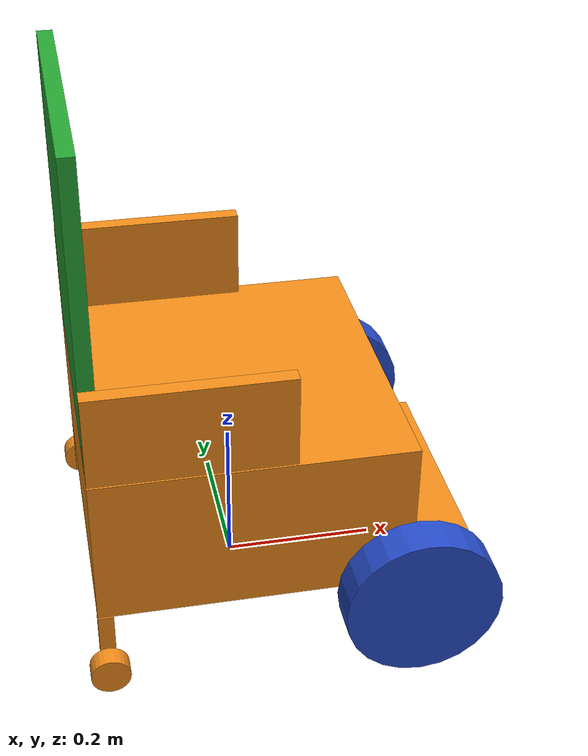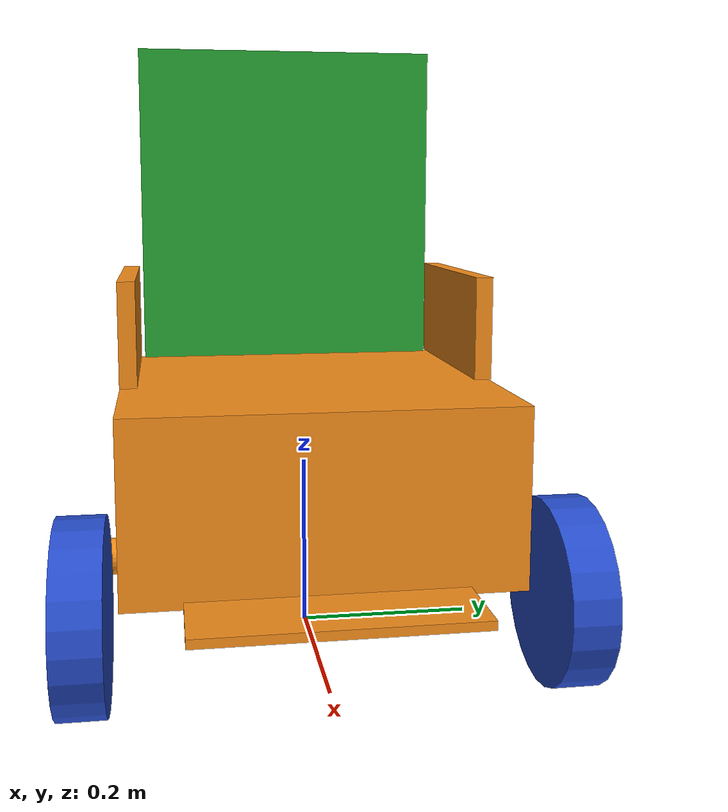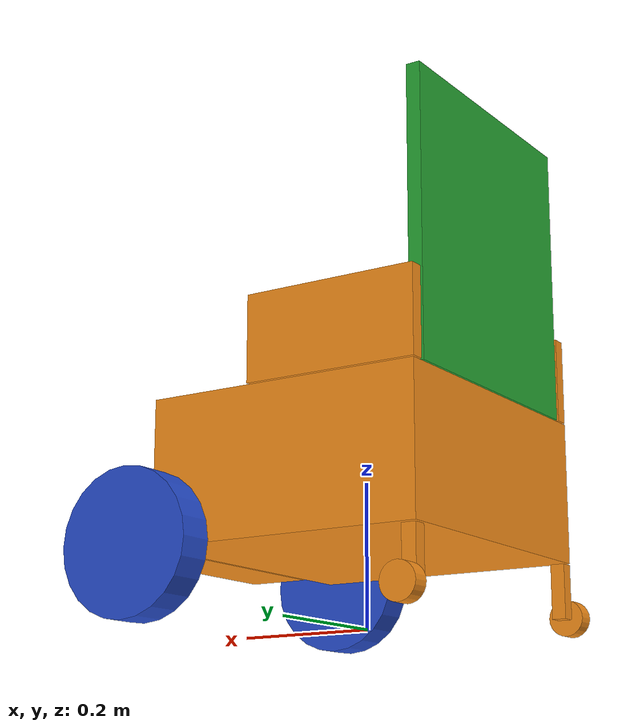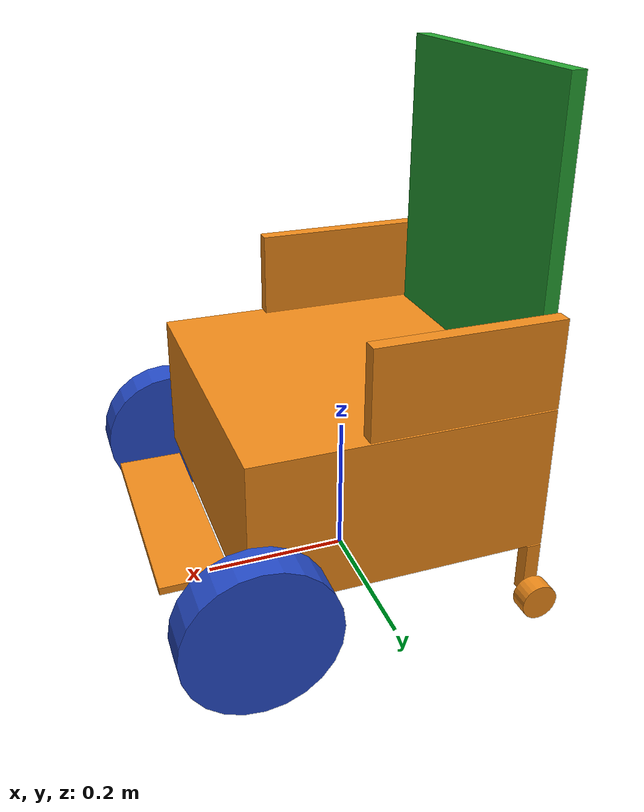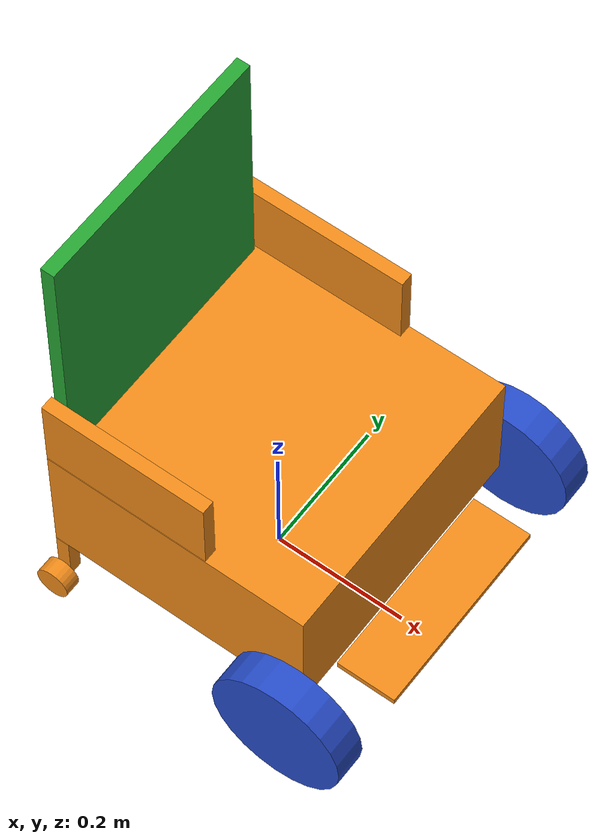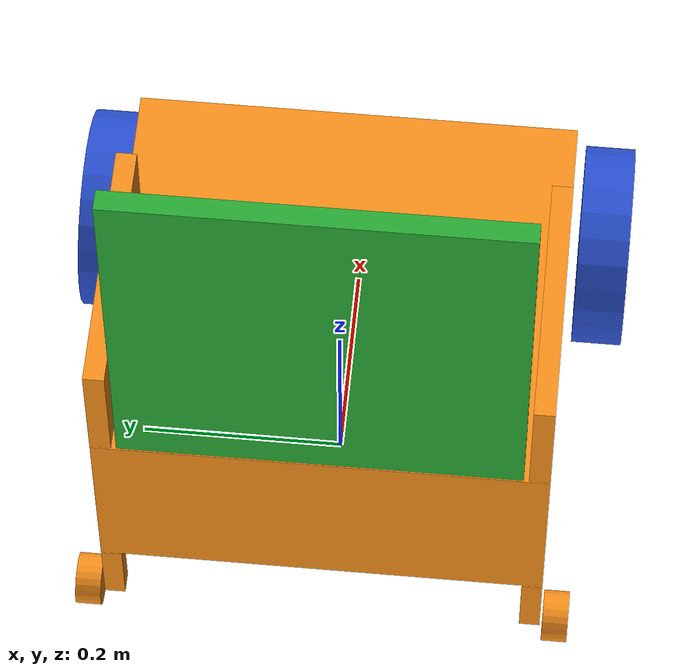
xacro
<?xml version='1.0'?>

<robot name="mywheelchair" xmlns:xacro="http://www.ros.org/wiki/xacro">

  <xacro:include filename="$(find wheelchair_description)/urdf/mywheelchair.gazebo" />
  <xacro:include filename="$(find wheelchair_description)/urdf/materials.xacro" />
  <xacro:include filename="$(find wheelchair_description)/urdf/macros.xacro" />

  <xacro:property name="damp" value="0.7"/>

  <xacro:macro name="transmission_block" params="joint_name idx">
      <transmission name="tran_${idx}">
        <type>transmission_interface/SimpleTransmission</type>
        <joint name="${joint_name}">
          <hardwareInterface>hardware_interface/EffortJointInterface</hardwareInterface>
        </joint>
        <actuator name="motor__${idx}">
          <hardwareInterface>hardware_interface/EffortJointInterface</hardwareInterface>
          <mechanicalReduction>1</mechanicalReduction>
        </actuator>
      </transmission>
  </xacro:macro>

<!-- seat base -->
  <link name='seat_base'>
    <inertial>
      <mass value="13.0"/>
      <origin xyz="0 0 0.2" rpy=" 0 0 0"/>
      <box_inertia m="13" x="0.4" y="0.43" z="0.2"/>
    </inertial>
    <collision name='collision'>
      <origin xyz="0 0 0.2" rpy=" 0 0 0"/>
      <geometry>
        <box size="0.4 0.43 0.2"/>
      </geometry>
    </collision>
    <visual name='seat_base_visual'>
      <origin xyz="0 0 0.2" rpy=" 0 0 0"/>
      <geometry>
        <box size="0.4 0.43 0.2"/>
      </geometry>
    </visual>

    <collision name='left_armrest_collision'>
      <origin xyz="-0.075 0.205 0.362" rpy=" 0 0 0"/>
      <geometry>
        <box size="0.25 0.02 0.12"/>
      </geometry>
      <surface>
        <friction>
          <ode>
            <mu>0</mu>
            <mu2>0</mu2>
            <slip1>1.0</slip1>
            <slip2>1.0</slip2>
          </ode>
        </friction>
      </surface>
    </collision>
    <visual name='left_armrest_visual'>
      <origin xyz="-0.075 0.205 0.362" rpy=" 0 0 0"/>
      <geometry>
        <box size="0.25 0.02 0.12"/>
      </geometry>
    </visual>

    <collision name='right_armrest_collision'>
      <origin xyz="-0.075 -0.205 0.362" rpy=" 0 0 0"/>
      <geometry>
        <box size="0.25 0.02 0.12"/>
      </geometry>
      <surface>
        <friction>
          <ode>
            <mu>0</mu>
            <mu2>0</mu2>
            <slip1>1.0</slip1>
            <slip2>1.0</slip2>
          </ode>
        </friction>
      </surface>
    </collision>
    <visual name='right_armrest_visual'>
      <origin xyz="-0.075 -0.205 0.362" rpy=" 0 0 0"/>
      <geometry>
        <box size="0.25 0.02 0.12"/>
      </geometry>
    </visual>

    <collision name='left_caster_support_collision'>
      <origin xyz="-0.19 0.205 0.06" rpy=" 0 0 0"/>
      <geometry>
        <box size="0.02 0.02 0.076"/>
      </geometry>
      <surface>
        <friction>
          <ode>
            <mu>0</mu>
            <mu2>0</mu2>
            <slip1>1.0</slip1>
            <slip2>1.0</slip2>
          </ode>
        </friction>
      </surface>
    </collision>
    <visual name='left_caster_support_visual'>
      <origin xyz="-0.19 0.205 0.06" rpy=" 0 0 0"/>
      <geometry>
        <box size="0.02 0.02 0.076"/>
      </geometry>
    </visual>

    <collision name='left_caster_collision'>
      <origin xyz="-0.19 0.23 0.025" rpy="0 1.570795 1.570795"/>
      <geometry>
        <cylinder radius="0.025" length="0.025"/>
      </geometry>
      <surface>
        <friction>
          <ode>
            <mu>0</mu>
            <mu2>0</mu2>
            <slip1>1.0</slip1>
            <slip2>1.0</slip2>
          </ode>
        </friction>
      </surface>
    </collision>
    <visual name='left_caster_visual'>
      <origin xyz="-0.19 0.23 0.025" rpy="0 1.570795 1.570795"/>
      <geometry>
        <cylinder radius="0.025" length="0.025"/>
      </geometry>
    </visual>

    <collision name='right_caster_support_collision'>
      <origin xyz="-0.19 -0.205 0.06" rpy=" 0 0 0"/>
      <geometry>
        <box size="0.02 0.02 0.076"/>
      </geometry>
      <surface>
        <friction>
          <ode>
            <mu>0</mu>
            <mu2>0</mu2>
            <slip1>1.0</slip1>
            <slip2>1.0</slip2>
          </ode>
        </friction>
      </surface>
    </collision>
    <visual name='right_caster_support_visual'>
      <origin xyz="-0.19 -0.205 0.06" rpy=" 0 0 0"/>
      <geometry>
        <box size="0.02 0.02 0.076"/>
      </geometry>
    </visual>

    <collision name='right_caster_collision'>
      <origin xyz="-0.19 -0.23 0.025" rpy="0 1.570795 1.570795"/>
      <geometry>
        <cylinder radius="0.025" length="0.025"/>
      </geometry>
      <surface>
        <friction>
          <ode>
            <mu>0</mu>
            <mu2>0</mu2>
            <slip1>1.0</slip1>
            <slip2>1.0</slip2>
          </ode>
        </friction>
      </surface>
    </collision>
    <visual name='right_caster_visual'>
      <origin xyz="-0.19 -0.23 0.025" rpy="0 1.570795 1.570795"/>
      <geometry>
        <cylinder radius="0.025" length="0.025"/>
      </geometry>
    </visual>

    <collision name='foot_rigging_collision'>
      <origin xyz="0.25 0 0.105" rpy=" 0 0 0"/>
      <geometry>
        <box size="0.09 0.3 0.01"/>
      </geometry>
      <surface>
        <friction>
          <ode>
            <mu>0</mu>
            <mu2>0</mu2>
            <slip1>1.0</slip1>
            <slip2>1.0</slip2>
          </ode>
        </friction>
      </surface>
    </collision>
    <visual name='foot_rigging_visual'>
      <origin xyz="0.25 0 0.105" rpy=" 0 0 0"/>
      <geometry>
        <box size="0.09 0.3 0.01"/>
      </geometry>
    </visual>
  </link>

<!-- Left wheel -->
  <joint name="left_wheel_hinge" type="continuous">
    <origin xyz="0.2 0.25 0.1" rpy="0 0 0"/>
    <parent link="seat_base"/>
    <child link="left_wheel"/>
    <axis xyz="0 1 0" rpy="0 0 0"/>
    <limit effort="100" velocity="100"/>
    <joint_properties damping="0.0" friction="0.0"/>
  </joint>
  <link name="left_wheel">
    <collision name="collision">
      <origin xyz="0 0 0.0" rpy="0 1.570795 1.570795"/>
      <geometry>
        <cylinder radius="0.1" length="0.05"/>
      </geometry>
    </collision>
    <visual name="left_wheel_visual">
      <origin xyz="0 0 0.0" rpy="0 1.570795 1.570795"/>
      <geometry>
        <cylinder radius="0.1" length="0.05"/>
      </geometry>
      <material name="blue"/>
    </visual>
    <inertial>
      <origin xyz="0 0 0.0" rpy="0 1.570795 1.570795"/>
      <mass value="1"/>
      <cylinder_inertia m="1" r="0.1" h="0.05"/>
    </inertial>
  </link>

<!-- Right wheel -->
  <joint name="right_wheel_hinge" type="continuous">
    <origin xyz="0.2 -0.25 0.1" rpy="0 0 0"/>
    <parent link="seat_base"/>
    <child link="right_wheel"/>
    <axis xyz="0 1 0" rpy="0 0 0"/>
    <limit effort="100" velocity="100"/>
    <joint_properties damping="0.0" friction="0.0"/>
  </joint>
  <link name="right_wheel">
    <collision name="collision">
      <origin xyz="0 0 0.0" rpy="0 1.570795 1.570795"/>
      <geometry>
        <cylinder radius="0.1" length="0.05"/>
      </geometry>
    </collision>
    <visual name="right_wheel_visual">
      <origin xyz="0 0 0.0" rpy="0 1.570795 1.570795"/>
      <geometry>
        <cylinder radius="0.1" length="0.05"/>
      </geometry>
      <material name="blue"/>
    </visual>
    <inertial>
      <origin xyz="0 0 0.0" rpy="0 1.570795 1.570795"/>
      <mass value="1"/>
      <cylinder_inertia m="1" r="0.1" h="0.05"/>
    </inertial>
  </link>

<!-- seat back -->
  <joint name="seat_back_hinge" type="continuous">
    <origin xyz="-0.19 0 0.4" rpy="0 0 0"/>
    <parent link="seat_base"/>
    <child link="seatback"/>
    <axis xyz="0 1 0" rpy="0 0 0"/>
    <limit effort="100" velocity="0.5"/>
    <limit upper="1.570795" lower="-1.570795"/>
    <joint_properties damping="0.0" friction="0.0"/>
  </joint>

  <link name="seatback">
    <collision name="collision">
      <origin xyz="0 0 0.102" rpy="0 1.570795 1.570795"/>
      <geometry>
        <box size="0.4 0.02 0.38"/>
      </geometry>
    </collision>
    <visual name="right_wheel_visual">
      <origin xyz="0 0 0.102" rpy="0 1.570795 1.570795"/>
      <geometry>
        <box size="0.4 0.02 0.38"/>
      </geometry>
      <material name="green"/>
    </visual>
    <inertial>
      <origin xyz="0 0 0.102" rpy="0 1.570795 1.570795"/>
      <mass value="1"/>
      <box_inertia m="1" x="0.4" y="0.02" z="0.38"/>
    </inertial>
  </link>

  <xacro:transmission_block joint_name="left_wheel_hinge" idx="1"/>
  <xacro:transmission_block joint_name="right_wheel_hinge" idx="2"/>
  <xacro:transmission_block joint_name="seat_back_hinge" idx="3"/>

</robot>

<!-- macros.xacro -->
<robot>
  <macro name="cylinder_inertia" params="m r h">
    <inertia  ixx="${m*(3*r*r+h*h)/12}" ixy = "0" ixz = "0"
      iyy="${m*(3*r*r+h*h)/12}" iyz = "0"
      izz="${m*r*r/2}"
    />
  </macro>

  <macro name="box_inertia" params="m x y z">
    <inertia  ixx="${m*(y*y+z*z)/12}" ixy = "0" ixz = "0"
      iyy="${m*(x*x+z*z)/12}" iyz = "0"
      izz="${m*(x*x+z*z)/12}"
    />
  </macro>

  <macro name="sphere_inertia" params="m r">
    <inertia  ixx="${2*m*r*r/5}" ixy = "0" ixz = "0"
      iyy="${2*m*r*r/5}" iyz = "0"
      izz="${2*m*r*r/5}"
    />
  </macro>

</robot>
